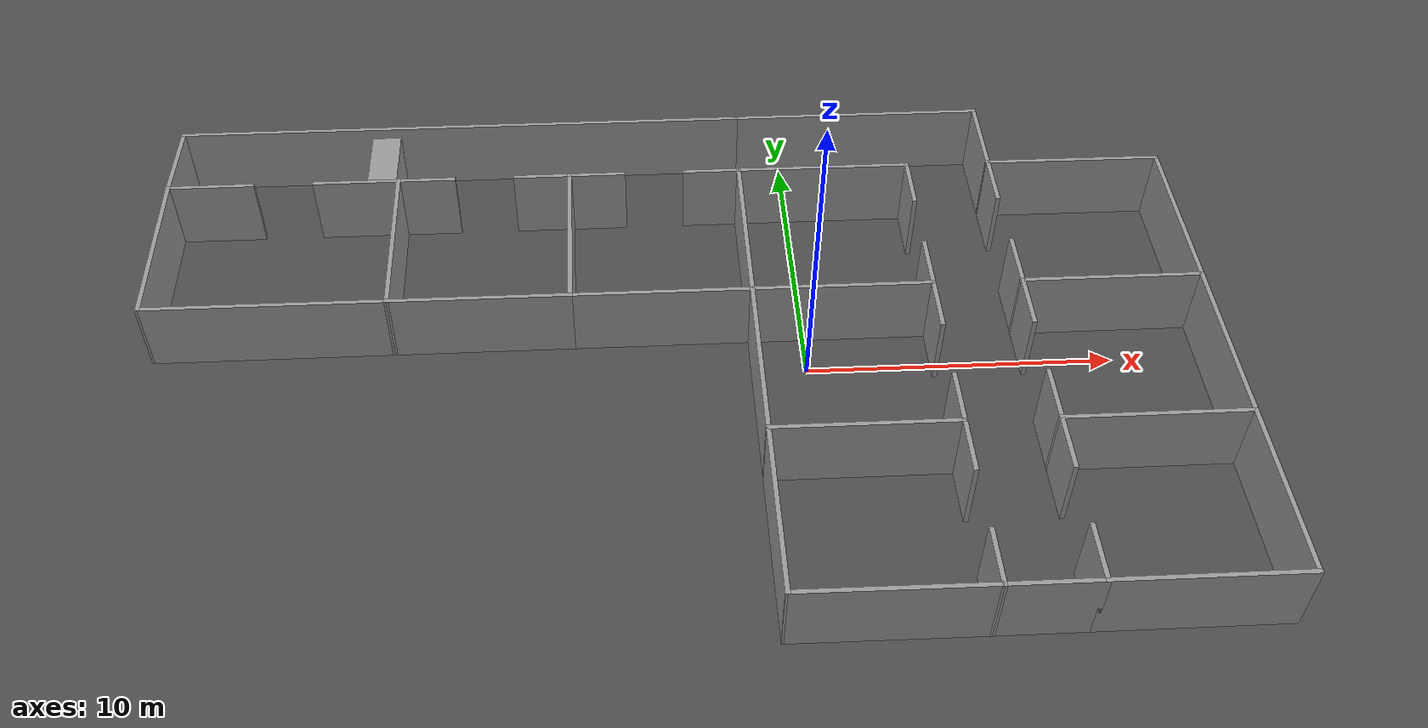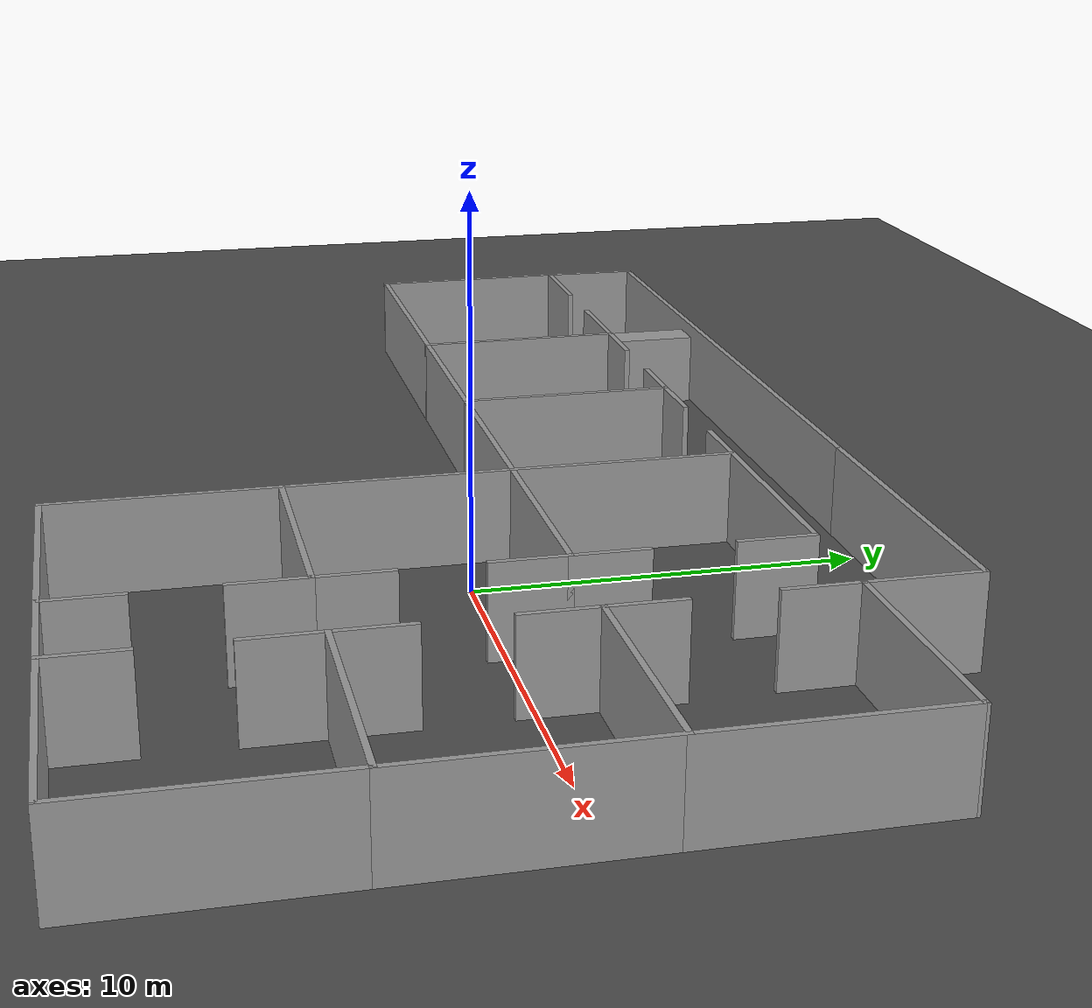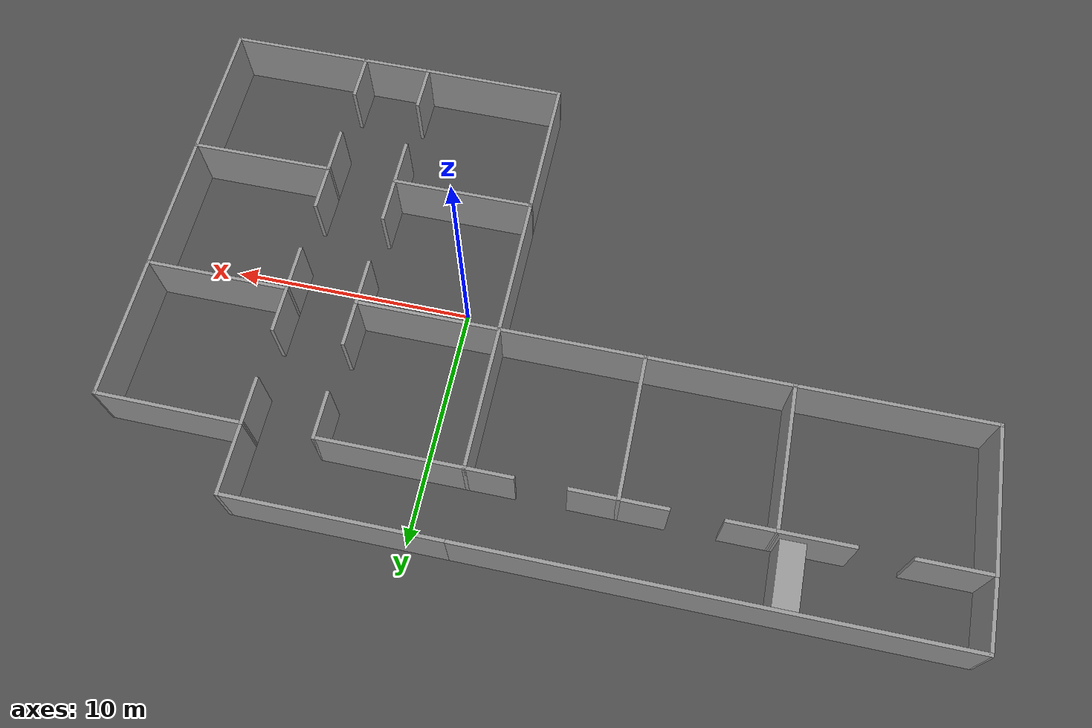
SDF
<sdf version="1.7">
 <world name="default">
  <light name="sun" type="directional">
   <pose>0 0 10 0 -0 0</pose>
   <diffuse>0.8 0.8 0.8 1</diffuse>
   <specular>0.2 0.2 0.2 1</specular>
   <attenuation>
    <range>1000</range>
    <constant>0.9</constant>
    <linear>0.01</linear>
    <quadratic>0.001</quadratic>
   </attenuation>
   <direction>-0.5 0.1 -0.9</direction>
   <spot><inner_angle>0</inner_angle><outer_angle>0</outer_angle><falloff>0</falloff></spot>
  </light>
  <model name="ground_plane">
   <static>1</static>
   <link name="link">
    <collision name="collision">
     <geometry><plane><normal>0 0 1</normal><size>100 100</size></plane></geometry>
     <surface><friction><ode><mu>100</mu><mu2>50</mu2></ode></friction></surface>
    </collision>
    <visual name="visual">
     <cast_shadows>0</cast_shadows>
     <geometry><plane><normal>0 0 1</normal><size>100 100</size></plane></geometry>
     <material>
      <script><uri>file://media/materials/scripts/gazebo.material</uri><name>Gazebo/Grey</name></script>
     </material>
    </visual>
   </link>
  </model>
  <model name="asphalt_plane">
   <static>1</static>
   <link name="link">
    <collision name="collision"><geometry><box><size>200 200 0.1</size></box></geometry></collision>
    <visual name="visual">
     <cast_shadows>0</cast_shadows>
     <geometry><box><size>200 200 0.1</size></box></geometry>
     <material>
      <script>
       <uri>model://asphalt_plane/materials/scripts</uri>
       <uri>model://asphalt_plane/materials/textures</uri>
       <name>vrc/asphalt</name>
      </script>
     </material>
    </visual>
   </link>
  </model>
  <physics name="default_physics" default="0" type="ode">
   <ode>
    <solver>
     <type>quick</type>
     <iters>10</iters>
     <sor>1.3</sor>
     <use_dynamic_moi_rescaling>0</use_dynamic_moi_rescaling>
    </solver>
    <constraints>
     <cfm>0</cfm>
     <erp>0.2</erp>
     <contact_max_correcting_vel>100</contact_max_correcting_vel>
     <contact_surface_layer>0.001</contact_surface_layer>
    </constraints>
   </ode>
   <max_step_size>0.004</max_step_size>
   <real_time_factor>1</real_time_factor>
   <real_time_update_rate>250</real_time_update_rate>
  </physics>
  <model name="Office_2">
   <pose>-4.24252 -0.072373 0 0 -0 0</pose>
   <link name="Wall_1">
    <collision name="Wall_1_Collision">
     <geometry><box><size>6 0.15 2.5</size></box></geometry>
     <pose>0 0 1.25 0 -0 0</pose>
    </collision>
    <visual name="Wall_1_Visual">
     <pose>0 0 1.25 0 -0 0</pose>
     <geometry><box><size>6 0.15 2.5</size></box></geometry>
     <material>
      <script><uri>file://media/materials/scripts/gazebo.material</uri><name>Gazebo/Grey</name></script>
      <ambient>1 1 1 1</ambient>
     </material>
     <meta><layer>0</layer></meta>
    </visual>
    <pose>2.48957 -1.41258 0 0 -0 1.5708</pose>
   </link>
   <link name="Wall_10">
    <collision name="Wall_10_Collision">
     <geometry><box><size>6 0.15 2.5</size></box></geometry>
     <pose>0 0 1.25 0 -0 0</pose>
    </collision>
    <visual name="Wall_10_Visual">
     <pose>0 0 1.25 0 -0 0</pose>
     <geometry><box><size>6 0.15 2.5</size></box></geometry>
     <material>
      <script><uri>file://media/materials/scripts/gazebo.material</uri><name>Gazebo/Grey</name></script>
      <ambient>1 1 1 1</ambient>
     </material>
     <meta><layer>0</layer></meta>
    </visual>
    <pose>2.48957 4.43742 0 0 -0 1.5708</pose>
   </link>
   <link name="Wall_107">
    <collision name="Wall_107_Collision">
     <geometry><box><size>6 0.15 2.5</size></box></geometry>
     <pose>0 0 1.25 0 -0 0</pose>
    </collision>
    <visual name="Wall_107_Visual">
     <pose>0 0 1.25 0 -0 0</pose>
     <geometry><box><size>6 0.15 2.5</size></box></geometry>
     <material>
      <script><uri>file://media/materials/scripts/gazebo.material</uri><name>Gazebo/Grey</name></script>
      <ambient>1 1 1 1</ambient>
     </material>
     <meta><layer>0</layer></meta>
    </visual>
    <pose>-6.28543 1.51242 0 0 -0 3.14159</pose>
   </link>
   <link name="Wall_108">
    <collision name="Wall_108_Collision">
     <geometry><box><size>6.00008 0.15 2.5</size></box></geometry>
     <pose>0 0 1.25 0 -0 0</pose>
    </collision>
    <visual name="Wall_108_Visual">
     <pose>0 0 1.25 0 -0 0</pose>
     <geometry><box><size>6.00008 0.15 2.5</size></box></geometry>
     <material>
      <script><uri>file://media/materials/scripts/gazebo.material</uri><name>Gazebo/Grey</name></script>
      <ambient>1 1 1 1</ambient>
     </material>
     <meta><layer>0</layer></meta>
    </visual>
    <pose>-9.22572 4.43742 0 0 -0 1.57603</pose>
   </link>
   <link name="Wall_111">
    <collision name="Wall_111_Collision">
     <geometry><box><size>8 0.15 2.5</size></box></geometry>
     <pose>0 0 1.25 0 -0 0</pose>
    </collision>
    <visual name="Wall_111_Visual">
     <pose>0 0 1.25 0 -0 0</pose>
     <geometry><box><size>8 0.15 2.5</size></box></geometry>
     <material>
      <script><uri>file://media/materials/scripts/gazebo.material</uri><name>Gazebo/Grey</name></script>
      <ambient>1 1 1 1</ambient>
     </material>
     <meta><layer>0</layer></meta>
    </visual>
    <pose>-13.1354 1.51242 0 0 -0 3.14159</pose>
   </link>
   <link name="Wall_112">
    <collision name="Wall_112_Collision">
     <geometry><box><size>6.00008 0.15 2.5</size></box></geometry>
     <pose>0 0 1.25 0 -0 0</pose>
    </collision>
    <visual name="Wall_112_Visual">
     <pose>0 0 1.25 0 -0 0</pose>
     <geometry><box><size>6.00008 0.15 2.5</size></box></geometry>
     <material>
      <script><uri>file://media/materials/scripts/gazebo.material</uri><name>Gazebo/Grey</name></script>
      <ambient>1 1 1 1</ambient>
     </material>
     <meta><layer>0</layer></meta>
    </visual>
    <pose>-17.0757 4.43742 0 0 -0 1.57603</pose>
   </link>
   <link name="Wall_115">
    <collision name="Wall_115_Collision">
     <geometry><box><size>19.75 0.15 2.5</size></box></geometry>
     <pose>0 0 1.25 0 -0 0</pose>
    </collision>
    <visual name="Wall_115_Visual">
     <pose>0 0 1.25 0 -0 0</pose>
     <geometry><box><size>19.75 0.15 2.5</size></box></geometry>
     <material>
      <script><uri>file://media/materials/scripts/gazebo.material</uri><name>Gazebo/Grey</name></script>
      <ambient>1 1 1 1</ambient>
     </material>
     <meta><layer>0</layer></meta>
    </visual>
    <pose>-7.21043 10.2124 0 0 -0 3.14159</pose>
   </link>
   <link name="Wall_116">
    <collision name="Wall_116_Collision">
     <geometry><box><size>3.00114 0.15 2.5</size></box></geometry>
     <pose>0 0 1.25 0 -0 0</pose>
    </collision>
    <visual name="Wall_116_Visual">
     <pose>0 0 1.25 0 -0 0</pose>
     <geometry><box><size>3.00114 0.15 2.5</size></box></geometry>
     <material>
      <script><uri>file://media/materials/scripts/gazebo.material</uri><name>Gazebo/Grey</name></script>
      <ambient>1 1 1 1</ambient>
     </material>
     <meta><layer>0</layer></meta>
    </visual>
    <pose>-17.0507 8.78742 0 0 -0 -1.59907</pose>
   </link>
   <link name="Wall_118">
    <collision name="Wall_118_Collision">
     <geometry><box><size>6 0.15 2.5</size></box></geometry>
     <pose>0 0 1.25 0 -0 0</pose>
    </collision>
    <visual name="Wall_118_Visual">
     <pose>0 0 1.25 0 -0 0</pose>
     <geometry><box><size>6 0.15 2.5</size></box></geometry>
     <material>
      <script><uri>file://media/materials/scripts/gazebo.material</uri><name>Gazebo/Grey</name></script>
      <ambient>1 1 1 1</ambient>
     </material>
     <meta><layer>0</layer></meta>
    </visual>
    <pose>5.41457 7.36242 0 0 -0 0</pose>
   </link>
   <link name="Wall_120">
    <collision name="Wall_120_Collision">
     <geometry><box><size>2 0.15 2.5</size></box></geometry>
     <pose>0 0 1.25 0 -0 0</pose>
    </collision>
    <visual name="Wall_120_Visual">
     <pose>0 0 1.25 0 -0 0</pose>
     <geometry><box><size>2 0.15 2.5</size></box></geometry>
     <material>
      <script><uri>file://media/materials/scripts/gazebo.material</uri><name>Gazebo/Grey</name></script>
      <ambient>1 1 1 1</ambient>
     </material>
     <meta><layer>0</layer></meta>
    </visual>
    <pose>-2.43543 7.36242 0 0 -0 0</pose>
   </link>
   <link name="Wall_123">
    <collision name="Wall_123_Collision">
     <geometry><box><size>2 0.15 2.5</size></box></geometry>
     <pose>0 0 1.25 0 -0 0</pose>
    </collision>
    <visual name="Wall_123_Visual">
     <pose>0 0 1.25 0 -0 0</pose>
     <geometry><box><size>2 0.15 2.5</size></box></geometry>
     <material>
      <script><uri>file://media/materials/scripts/gazebo.material</uri><name>Gazebo/Grey</name></script>
      <ambient>1 1 1 1</ambient>
     </material>
     <meta><layer>0</layer></meta>
    </visual>
    <pose>1.56457 7.36242 0 0 -0 3.14159</pose>
   </link>
   <link name="Wall_125">
    <collision name="Wall_125_Collision">
     <geometry><box><size>2.03059 0.15 2.5</size></box></geometry>
     <pose>0 0 1.25 0 -0 0</pose>
    </collision>
    <visual name="Wall_125_Visual">
     <pose>0 0 1.25 0 -0 0</pose>
     <geometry><box><size>2.03059 0.15 2.5</size></box></geometry>
     <material>
      <script><uri>file://media/materials/scripts/gazebo.material</uri><name>Gazebo/Grey</name></script>
      <ambient>1 1 1 1</ambient>
     </material>
     <meta><layer>0</layer></meta>
    </visual>
    <pose>-8.30072 7.36242 0 0 -0 0</pose>
   </link>
   <link name="Wall_127">
    <collision name="Wall_127_Collision">
     <geometry><box><size>2 0.15 2.5</size></box></geometry>
     <pose>0 0 1.25 0 -0 0</pose>
    </collision>
    <visual name="Wall_127_Visual">
     <pose>0 0 1.25 0 -0 0</pose>
     <geometry><box><size>2 0.15 2.5</size></box></geometry>
     <material>
      <script><uri>file://media/materials/scripts/gazebo.material</uri><name>Gazebo/Grey</name></script>
      <ambient>1 1 1 1</ambient>
     </material>
     <meta><layer>0</layer></meta>
    </visual>
    <pose>-4.28543 7.36242 0 0 -0 3.14159</pose>
   </link>
   <link name="Wall_129">
    <collision name="Wall_129_Collision">
     <geometry><box><size>3 0.15 2.5</size></box></geometry>
     <pose>0 0 1.25 0 -0 0</pose>
    </collision>
    <visual name="Wall_129_Visual">
     <pose>0 0 1.25 0 -0 0</pose>
     <geometry><box><size>3 0.15 2.5</size></box></geometry>
     <material>
      <script><uri>file://media/materials/scripts/gazebo.material</uri><name>Gazebo/Grey</name></script>
      <ambient>1 1 1 1</ambient>
     </material>
     <meta><layer>0</layer></meta>
    </visual>
    <pose>-10.666 7.36242 0 0 -0 3.14159</pose>
   </link>
   <link name="Wall_131">
    <collision name="Wall_131_Collision">
     <geometry><box><size>3 0.15 2.5</size></box></geometry>
     <pose>0 0 1.25 0 -0 0</pose>
    </collision>
    <visual name="Wall_131_Visual">
     <pose>0 0 1.25 0 -0 0</pose>
     <geometry><box><size>3 0.15 2.5</size></box></geometry>
     <material>
      <script><uri>file://media/materials/scripts/gazebo.material</uri><name>Gazebo/Grey</name></script>
      <ambient>1 1 1 1</ambient>
     </material>
     <meta><layer>0</layer></meta>
    </visual>
    <pose>-15.666 7.36242 0 0 -0 0</pose>
   </link>
   <link name="Wall_14">
    <collision name="Wall_14_Collision">
     <geometry><box><size>3 0.15 2.5</size></box></geometry>
     <pose>0 0 1.25 0 -0 0</pose>
    </collision>
    <visual name="Wall_14_Visual">
     <pose>0 0 1.25 0 -0 0</pose>
     <geometry><box><size>3 0.15 2.5</size></box></geometry>
     <material>
      <script><uri>file://media/materials/scripts/gazebo.material</uri><name>Gazebo/Grey</name></script>
      <ambient>1 1 1 1</ambient>
     </material>
     <meta><layer>0</layer></meta>
    </visual>
    <pose>9.81777 -10.2142 0 0 -0 0</pose>
   </link>
   <link name="Wall_19">
    <collision name="Wall_19_Collision">
     <geometry><box><size>6 0.15 2.5</size></box></geometry>
     <pose>0 0 1.25 0 -0 0</pose>
    </collision>
    <visual name="Wall_19_Visual">
     <pose>0 0 1.25 0 -0 0</pose>
     <geometry><box><size>6 0.15 2.5</size></box></geometry>
     <material>
      <script><uri>file://media/materials/scripts/gazebo.material</uri><name>Gazebo/Grey</name></script>
      <ambient>1 1 1 1</ambient>
     </material>
     <meta><layer>0</layer></meta>
    </visual>
    <pose>14.1678 -10.2142 0 0 -0 0</pose>
   </link>
   <link name="Wall_2">
    <collision name="Wall_2_Collision">
     <geometry><box><size>6 0.15 2.5</size></box></geometry>
     <pose>0 0 1.25 0 -0 0</pose>
    </collision>
    <visual name="Wall_2_Visual">
     <pose>0 0 1.25 0 -0 0</pose>
     <geometry><box><size>6 0.15 2.5</size></box></geometry>
     <material>
      <script><uri>file://media/materials/scripts/gazebo.material</uri><name>Gazebo/Grey</name></script>
      <ambient>1 1 1 1</ambient>
     </material>
     <meta><layer>0</layer></meta>
    </visual>
    <pose>5.41457 1.51242 0 0 -0 0</pose>
   </link>
   <link name="Wall_20">
    <collision name="Wall_20_Collision">
     <geometry><box><size>6 0.15 2.5</size></box></geometry>
     <pose>0 0 1.25 0 -0 0</pose>
    </collision>
    <visual name="Wall_20_Visual">
     <pose>0 0 1.25 0 -0 0</pose>
     <geometry><box><size>6 0.15 2.5</size></box></geometry>
     <material>
      <script><uri>file://media/materials/scripts/gazebo.material</uri><name>Gazebo/Grey</name></script>
      <ambient>1 1 1 1</ambient>
     </material>
     <meta><layer>0</layer></meta>
    </visual>
    <pose>17.0928 -7.28918 0 0 -0 1.5708</pose>
   </link>
   <link name="Wall_21">
    <collision name="Wall_21_Collision">
     <geometry><box><size>6 0.15 2.5</size></box></geometry>
     <pose>0 0 1.25 0 -0 0</pose>
    </collision>
    <visual name="Wall_21_Visual">
     <pose>0 0 1.25 0 -0 0</pose>
     <geometry><box><size>6 0.15 2.5</size></box></geometry>
     <material>
      <script><uri>file://media/materials/scripts/gazebo.material</uri><name>Gazebo/Grey</name></script>
      <ambient>1 1 1 1</ambient>
     </material>
     <meta><layer>0</layer></meta>
    </visual>
    <pose>14.1678 -4.36418 0 0 -0 3.14159</pose>
   </link>
   <link name="Wall_23">
    <collision name="Wall_23_Collision">
     <geometry><box><size>6 0.15 2.5</size></box></geometry>
     <pose>0 0 1.25 0 -0 0</pose>
    </collision>
    <visual name="Wall_23_Visual">
     <pose>0 0 1.25 0 -0 0</pose>
     <geometry><box><size>6 0.15 2.5</size></box></geometry>
     <material>
      <script><uri>file://media/materials/scripts/gazebo.material</uri><name>Gazebo/Grey</name></script>
      <ambient>1 1 1 1</ambient>
     </material>
     <meta><layer>0</layer></meta>
    </visual>
    <pose>17.0928 -1.43918 0 0 -0 1.5708</pose>
   </link>
   <link name="Wall_24">
    <collision name="Wall_24_Collision">
     <geometry><box><size>6 0.15 2.5</size></box></geometry>
     <pose>0 0 1.25 0 -0 0</pose>
    </collision>
    <visual name="Wall_24_Visual">
     <pose>0 0 1.25 0 -0 0</pose>
     <geometry><box><size>6 0.15 2.5</size></box></geometry>
     <material>
      <script><uri>file://media/materials/scripts/gazebo.material</uri><name>Gazebo/Grey</name></script>
      <ambient>1 1 1 1</ambient>
     </material>
     <meta><layer>0</layer></meta>
    </visual>
    <pose>14.1678 1.48582 0 0 -0 3.14159</pose>
   </link>
   <link name="Wall_26">
    <collision name="Wall_26_Collision">
     <geometry><box><size>6 0.15 2.5</size></box></geometry>
     <pose>0 0 1.25 0 -0 0</pose>
    </collision>
    <visual name="Wall_26_Visual">
     <pose>0 0 1.25 0 -0 0</pose>
     <geometry><box><size>6 0.15 2.5</size></box></geometry>
     <material>
      <script><uri>file://media/materials/scripts/gazebo.material</uri><name>Gazebo/Grey</name></script>
      <ambient>1 1 1 1</ambient>
     </material>
     <meta><layer>0</layer></meta>
    </visual>
    <pose>17.0928 4.41082 0 0 -0 1.5708</pose>
   </link>
   <link name="Wall_27">
    <collision name="Wall_27_Collision">
     <geometry><box><size>6.05326 0.15 2.5</size></box></geometry>
     <pose>0 0 1.25 0 -0 0</pose>
    </collision>
    <visual name="Wall_27_Visual">
     <pose>0 0 1.25 0 -0 0</pose>
     <geometry><box><size>6.05326 0.15 2.5</size></box></geometry>
     <material>
      <script><uri>file://media/materials/scripts/gazebo.material</uri><name>Gazebo/Grey</name></script>
      <ambient>1 1 1 1</ambient>
     </material>
     <meta><layer>0</layer></meta>
    </visual>
    <pose>14.1412 7.34912 0 0 -0 3.13709</pose>
   </link>
   <link name="Wall_33">
    <collision name="Wall_33_Collision">
     <geometry><box><size>2 0.15 2.5</size></box></geometry>
     <pose>0 0 1.25 0 -0 0</pose>
    </collision>
    <visual name="Wall_33_Visual">
     <pose>0 0 1.25 0 -0 0</pose>
     <geometry><box><size>2 0.15 2.5</size></box></geometry>
     <material>
      <script><uri>file://media/materials/scripts/gazebo.material</uri><name>Gazebo/Grey</name></script>
      <ambient>1 1 1 1</ambient>
     </material>
     <meta><layer>0</layer></meta>
    </visual>
    <pose>8.33957 6.43742 0 0 -0 -1.5708</pose>
   </link>
   <link name="Wall_35">
    <collision name="Wall_35_Collision">
     <geometry><box><size>2 0.15 2.5</size></box></geometry>
     <pose>0 0 1.25 0 -0 0</pose>
    </collision>
    <visual name="Wall_35_Visual">
     <pose>0 0 1.25 0 -0 0</pose>
     <geometry><box><size>2 0.15 2.5</size></box></geometry>
     <material>
      <script><uri>file://media/materials/scripts/gazebo.material</uri><name>Gazebo/Grey</name></script>
      <ambient>1 1 1 1</ambient>
     </material>
     <meta><layer>0</layer></meta>
    </visual>
    <pose>8.33957 2.43742 0 0 -0 1.5708</pose>
   </link>
   <link name="Wall_37">
    <collision name="Wall_37_Collision">
     <geometry><box><size>2 0.15 2.5</size></box></geometry>
     <pose>0 0 1.25 0 -0 0</pose>
    </collision>
    <visual name="Wall_37_Visual">
     <pose>0 0 1.25 0 -0 0</pose>
     <geometry><box><size>2 0.15 2.5</size></box></geometry>
     <material>
      <script><uri>file://media/materials/scripts/gazebo.material</uri><name>Gazebo/Grey</name></script>
      <ambient>1 1 1 1</ambient>
     </material>
     <meta><layer>0</layer></meta>
    </visual>
    <pose>8.33957 0.587423 0 0 -0 -1.5708</pose>
   </link>
   <link name="Wall_39">
    <collision name="Wall_39_Collision">
     <geometry><box><size>2 0.15 2.5</size></box></geometry>
     <pose>0 0 1.25 0 -0 0</pose>
    </collision>
    <visual name="Wall_39_Visual">
     <pose>0 0 1.25 0 -0 0</pose>
     <geometry><box><size>2 0.15 2.5</size></box></geometry>
     <material>
      <script><uri>file://media/materials/scripts/gazebo.material</uri><name>Gazebo/Grey</name></script>
      <ambient>1 1 1 1</ambient>
     </material>
     <meta><layer>0</layer></meta>
    </visual>
    <pose>8.33957 -3.41258 0 0 -0 1.5708</pose>
   </link>
   <link name="Wall_4">
    <collision name="Wall_4_Collision">
     <geometry><box><size>6 0.15 2.5</size></box></geometry>
     <pose>0 0 1.25 0 -0 0</pose>
    </collision>
    <visual name="Wall_4_Visual">
     <pose>0 0 1.25 0 -0 0</pose>
     <geometry><box><size>6 0.15 2.5</size></box></geometry>
     <material>
      <script><uri>file://media/materials/scripts/gazebo.material</uri><name>Gazebo/Grey</name></script>
      <ambient>1 1 1 1</ambient>
     </material>
     <meta><layer>0</layer></meta>
    </visual>
    <pose>5.41457 -4.33758 0 0 -0 3.14159</pose>
   </link>
   <link name="Wall_41">
    <collision name="Wall_41_Collision">
     <geometry><box><size>2 0.15 2.5</size></box></geometry>
     <pose>0 0 1.25 0 -0 0</pose>
    </collision>
    <visual name="Wall_41_Visual">
     <pose>0 0 1.25 0 -0 0</pose>
     <geometry><box><size>2 0.15 2.5</size></box></geometry>
     <material>
      <script><uri>file://media/materials/scripts/gazebo.material</uri><name>Gazebo/Grey</name></script>
      <ambient>1 1 1 1</ambient>
     </material>
     <meta><layer>0</layer></meta>
    </visual>
    <pose>8.33957 -5.26258 0 0 -0 -1.5708</pose>
   </link>
   <link name="Wall_43">
    <collision name="Wall_43_Collision">
     <geometry><box><size>2 0.15 2.5</size></box></geometry>
     <pose>0 0 1.25 0 -0 0</pose>
    </collision>
    <visual name="Wall_43_Visual">
     <pose>0 0 1.25 0 -0 0</pose>
     <geometry><box><size>2 0.15 2.5</size></box></geometry>
     <material>
      <script><uri>file://media/materials/scripts/gazebo.material</uri><name>Gazebo/Grey</name></script>
      <ambient>1 1 1 1</ambient>
     </material>
     <meta><layer>0</layer></meta>
    </visual>
    <pose>8.39277 -9.28918 0 0 -0 1.5708</pose>
   </link>
   <link name="Wall_45">
    <collision name="Wall_45_Collision">
     <geometry><box><size>2 0.15 2.5</size></box></geometry>
     <pose>0 0 1.25 0 -0 0</pose>
    </collision>
    <visual name="Wall_45_Visual">
     <pose>0 0 1.25 0 -0 0</pose>
     <geometry><box><size>2 0.15 2.5</size></box></geometry>
     <material>
      <script><uri>file://media/materials/scripts/gazebo.material</uri><name>Gazebo/Grey</name></script>
      <ambient>1 1 1 1</ambient>
     </material>
     <meta><layer>0</layer></meta>
    </visual>
    <pose>11.2428 -5.28918 0 0 -0 -1.5708</pose>
   </link>
   <link name="Wall_47">
    <collision name="Wall_47_Collision">
     <geometry><box><size>2 0.15 2.5</size></box></geometry>
     <pose>0 0 1.25 0 -0 0</pose>
    </collision>
    <visual name="Wall_47_Visual">
     <pose>0 0 1.25 0 -0 0</pose>
     <geometry><box><size>2 0.15 2.5</size></box></geometry>
     <material>
      <script><uri>file://media/materials/scripts/gazebo.material</uri><name>Gazebo/Grey</name></script>
      <ambient>1 1 1 1</ambient>
     </material>
     <meta><layer>0</layer></meta>
    </visual>
    <pose>11.2428 -9.28918 0 0 -0 1.5708</pose>
   </link>
   <link name="Wall_49">
    <collision name="Wall_49_Collision">
     <geometry><box><size>2 0.15 2.5</size></box></geometry>
     <pose>0 0 1.25 0 -0 0</pose>
    </collision>
    <visual name="Wall_49_Visual">
     <pose>0 0 1.25 0 -0 0</pose>
     <geometry><box><size>2 0.15 2.5</size></box></geometry>
     <material>
      <script><uri>file://media/materials/scripts/gazebo.material</uri><name>Gazebo/Grey</name></script>
      <ambient>1 1 1 1</ambient>
     </material>
     <meta><layer>0</layer></meta>
    </visual>
    <pose>11.2428 -3.43918 0 0 -0 1.5708</pose>
   </link>
   <link name="Wall_51">
    <collision name="Wall_51_Collision">
     <geometry><box><size>2 0.15 2.5</size></box></geometry>
     <pose>0 0 1.25 0 -0 0</pose>
    </collision>
    <visual name="Wall_51_Visual">
     <pose>0 0 1.25 0 -0 0</pose>
     <geometry><box><size>2 0.15 2.5</size></box></geometry>
     <material>
      <script><uri>file://media/materials/scripts/gazebo.material</uri><name>Gazebo/Grey</name></script>
      <ambient>1 1 1 1</ambient>
     </material>
     <meta><layer>0</layer></meta>
    </visual>
    <pose>11.2428 0.560823 0 0 -0 -1.5708</pose>
   </link>
   <link name="Wall_53">
    <collision name="Wall_53_Collision">
     <geometry><box><size>2 0.15 2.5</size></box></geometry>
     <pose>0 0 1.25 0 -0 0</pose>
    </collision>
    <visual name="Wall_53_Visual">
     <pose>0 0 1.25 0 -0 0</pose>
     <geometry><box><size>2 0.15 2.5</size></box></geometry>
     <material>
      <script><uri>file://media/materials/scripts/gazebo.material</uri><name>Gazebo/Grey</name></script>
      <ambient>1 1 1 1</ambient>
     </material>
     <meta><layer>0</layer></meta>
    </visual>
    <pose>11.1896 6.43742 0 0 -0 -1.5708</pose>
   </link>
   <link name="Wall_55">
    <collision name="Wall_55_Collision">
     <geometry><box><size>2 0.15 2.5</size></box></geometry>
     <pose>0 0 1.25 0 -0 0</pose>
    </collision>
    <visual name="Wall_55_Visual">
     <pose>0 0 1.25 0 -0 0</pose>
     <geometry><box><size>2 0.15 2.5</size></box></geometry>
     <material>
      <script><uri>file://media/materials/scripts/gazebo.material</uri><name>Gazebo/Grey</name></script>
      <ambient>1 1 1 1</ambient>
     </material>
     <meta><layer>0</layer></meta>
    </visual>
    <pose>11.2428 2.41082 0 0 -0 1.5708</pose>
   </link>
   <link name="Wall_6">
    <collision name="Wall_6_Collision">
     <geometry><box><size>6 0.15 2.5</size></box></geometry>
     <pose>0 0 1.25 0 -0 0</pose>
    </collision>
    <visual name="Wall_6_Visual">
     <pose>0 0 1.25 0 -0 0</pose>
     <geometry><box><size>6 0.15 2.5</size></box></geometry>
     <material>
      <script><uri>file://media/materials/scripts/gazebo.material</uri><name>Gazebo/Grey</name></script>
      <ambient>1 1 1 1</ambient>
     </material>
     <meta><layer>0</layer></meta>
    </visual>
    <pose>2.48957 -7.26258 0 0 -0 -1.5708</pose>
   </link>
   <link name="Wall_63">
    <collision name="Wall_63_Collision">
     <geometry><box><size>3 0.15 2.5</size></box></geometry>
     <pose>0 0 1.25 0 -0 0</pose>
    </collision>
    <visual name="Wall_63_Visual">
     <pose>0 0 1.25 0 -0 0</pose>
     <geometry><box><size>3 0.15 2.5</size></box></geometry>
     <material>
      <script><uri>file://media/materials/scripts/gazebo.material</uri><name>Gazebo/Grey</name></script>
      <ambient>1 1 1 1</ambient>
     </material>
     <meta><layer>0</layer></meta>
    </visual>
    <pose>11.1896 8.78742 0 0 -0 1.5708</pose>
   </link>
   <link name="Wall_64">
    <collision name="Wall_64_Collision">
     <geometry><box><size>8.75 0.15 2.5</size></box></geometry>
     <pose>0 0 1.25 0 -0 0</pose>
    </collision>
    <visual name="Wall_64_Visual">
     <pose>0 0 1.25 0 -0 0</pose>
     <geometry><box><size>8.75 0.15 2.5</size></box></geometry>
     <material>
      <script><uri>file://media/materials/scripts/gazebo.material</uri><name>Gazebo/Grey</name></script>
      <ambient>1 1 1 1</ambient>
     </material>
     <meta><layer>0</layer></meta>
    </visual>
    <pose>6.88957 10.2124 0 0 -0 3.14159</pose>
   </link>
   <link name="Wall_67">
    <collision name="Wall_67_Collision">
     <geometry><box><size>6 0.15 2.5</size></box></geometry>
     <pose>0 0 1.25 0 -0 0</pose>
    </collision>
    <visual name="Wall_67_Visual">
     <pose>0 0 1.25 0 -0 0</pose>
     <geometry><box><size>6 0.15 2.5</size></box></geometry>
     <material>
      <script><uri>file://media/materials/scripts/gazebo.material</uri><name>Gazebo/Grey</name></script>
      <ambient>1 1 1 1</ambient>
     </material>
     <meta><layer>0</layer></meta>
    </visual>
    <pose>-3.36043 4.43742 0 0 -0 -1.5708</pose>
   </link>
   <link name="Wall_68">
    <collision name="Wall_68_Collision">
     <geometry><box><size>6 0.15 2.5</size></box></geometry>
     <pose>0 0 1.25 0 -0 0</pose>
    </collision>
    <visual name="Wall_68_Visual">
     <pose>0 0 1.25 0 -0 0</pose>
     <geometry><box><size>6 0.15 2.5</size></box></geometry>
     <material>
      <script><uri>file://media/materials/scripts/gazebo.material</uri><name>Gazebo/Grey</name></script>
      <ambient>1 1 1 1</ambient>
     </material>
     <meta><layer>0</layer></meta>
    </visual>
    <pose>-0.435429 1.51242 0 0 -0 0</pose>
   </link>
   <link name="Wall_7">
    <collision name="Wall_7_Collision">
     <geometry><box><size>6.05326 0.15 2.5</size></box></geometry>
     <pose>0 0 1.25 0 -0 0</pose>
    </collision>
    <visual name="Wall_7_Visual">
     <pose>0 0 1.25 0 -0 0</pose>
     <geometry><box><size>6.05326 0.15 2.5</size></box></geometry>
     <material>
      <script><uri>file://media/materials/scripts/gazebo.material</uri><name>Gazebo/Grey</name></script>
      <ambient>1 1 1 1</ambient>
     </material>
     <meta><layer>0</layer></meta>
    </visual>
    <pose>5.44117 -10.2009 0 0 -0 -0.004506</pose>
   </link>
   <static>1</static>
  </model>
  <light name="my_light" type="directional">
   <pose>0 0 30 0 -0 0</pose>
   <diffuse>0.5 0.5 0.5 1</diffuse>
   <specular>0.1 0.1 0.1 1</specular>
   <attenuation><range>200</range></attenuation>
   <direction>0 0 -1</direction>
   <cast_shadows>0</cast_shadows>
   <spot><inner_angle>0</inner_angle><outer_angle>0</outer_angle><falloff>0</falloff></spot>
  </light>
  <gravity>0 0 -9.8066</gravity>
  <magnetic_field>6e-06 2.3e-05 -4.2e-05</magnetic_field>
  <atmosphere type="adiabatic"/>
  <scene><ambient>0.4 0.4 0.4 1</ambient><background>0.7 0.7 0.7 1</background><shadows>1</shadows></scene>
  <spherical_coordinates>
   <surface_model>EARTH_WGS84</surface_model>
   <latitude_deg>0</latitude_deg>
   <longitude_deg>0</longitude_deg>
   <elevation>0</elevation>
   <heading_deg>0</heading_deg>
  </spherical_coordinates>
  <model name="unit_box">
   <pose>-14.1172 8.7347 1.10521 -1.1e-05 1.2e-05 -0.00165</pose>
   <link name="link">
    <inertial>
     <mass>1</mass>
     <inertia>
      <ixx>0.166667</ixx>
      <ixy>0</ixy>
      <ixz>0</ixz>
      <iyy>0.166667</iyy>
      <iyz>0</iyz>
      <izz>0.166667</izz>
     </inertia>
    </inertial>
    <collision name="collision"><geometry><box><size>1 2.57008 2.11042</size></box></geometry></collision>
    <visual name="visual">
     <geometry><box><size>1 2.57008 2.11042</size></box></geometry>
     <material>
      <script><name>Gazebo/Grey</name><uri>file://media/materials/scripts/gazebo.material</uri></script>
     </material>
    </visual>
   </link>
  </model>
 </world>
</sdf>
